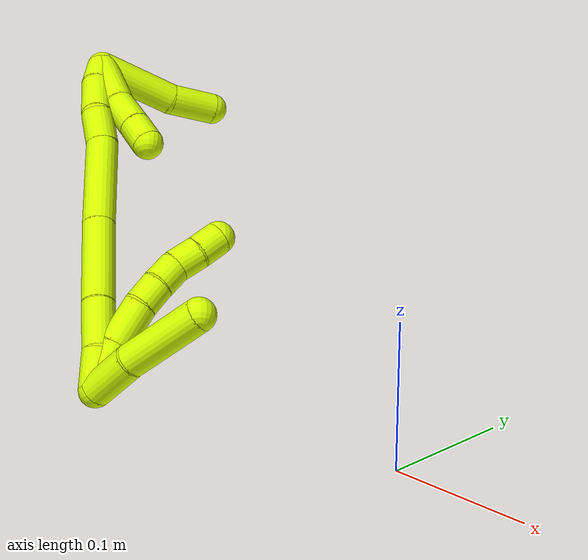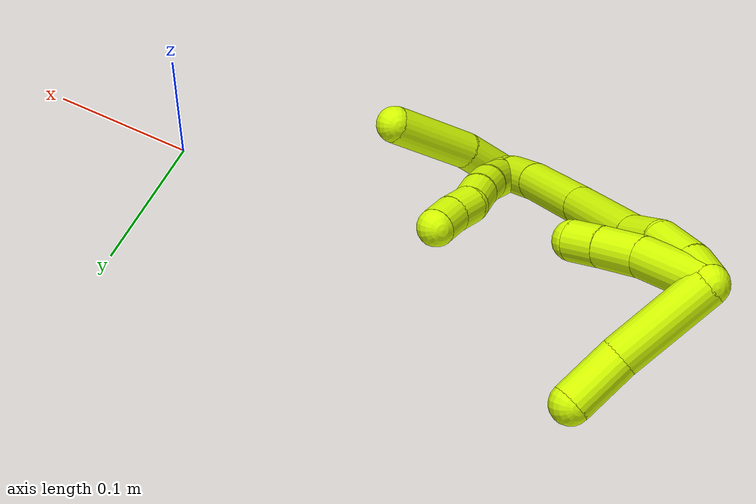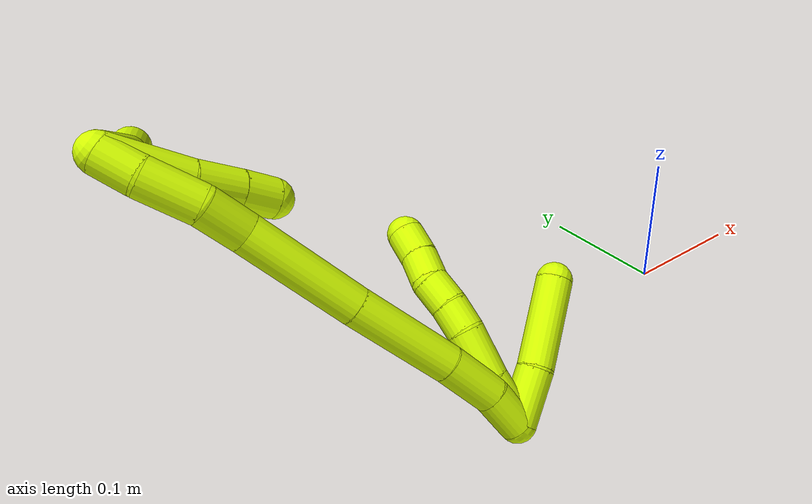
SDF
<sdf version="1.7">
 <world name="default">
  <model name="15">
   <static>0</static>
   <link name="15">
    <collision name="collision-cylinder-e_1_2_8">
     <pose>0.006007 0.004921 0.015695 -0.30385 0.350161 -0.054153</pose>
     <geometry><cylinder><radius>0.0125</radius><length>0.035021</length></cylinder></geometry>
     <surface>
      <friction><ode><mu>1.16</mu><mu2>1.16</mu2><slip1>0</slip1><slip2>0</slip2></ode></friction>
      <contact><ode><kp>1e+06</kp><kd>1</kd><max_vel>0</max_vel><min_depth>0.001</min_depth></ode></contact>
     </surface>
    </collision>
    <visual name="visual-cylinder-e_1_2_8">
     <pose>0.006007 0.004921 0.015695 -0.30385 0.350161 -0.054153</pose>
     <geometry><cylinder><radius>0.0125</radius><length>0.035021</length></cylinder></geometry>
     <material><ambient>0.835294 1 0 1</ambient></material>
    </visual>
    <collision name="collision-cylinder-e_2_8_9">
     <pose>0.019083 0.01681 0.045217 -0.466762 0.428256 -0.103295</pose>
     <geometry><cylinder><radius>0.0125</radius><length>0.034042</length></cylinder></geometry>
     <surface>
      <friction><ode><mu>1.16</mu><mu2>1.16</mu2><slip1>0</slip1><slip2>0</slip2></ode></friction>
      <contact><ode><kp>1e+06</kp><kd>1</kd><max_vel>0</max_vel><min_depth>0.001</min_depth></ode></contact>
     </surface>
    </collision>
    <visual name="visual-cylinder-e_2_8_9">
     <pose>0.019083 0.01681 0.045217 -0.466762 0.428256 -0.103295</pose>
     <geometry><cylinder><radius>0.0125</radius><length>0.034042</length></cylinder></geometry>
     <material><ambient>0.835294 1 0 1</ambient></material>
    </visual>
    <collision name="collision-cylinder-e_3_9_10">
     <pose>0.029264 0.029272 0.06689 -0.610951 0.31427 -0.099845</pose>
     <geometry><cylinder><radius>0.0125</radius><length>0.020142</length></cylinder></geometry>
     <surface>
      <friction><ode><mu>1.16</mu><mu2>1.16</mu2><slip1>0</slip1><slip2>0</slip2></ode></friction>
      <contact><ode><kp>1e+06</kp><kd>1</kd><max_vel>0</max_vel><min_depth>0.001</min_depth></ode></contact>
     </surface>
    </collision>
    <visual name="visual-cylinder-e_3_9_10">
     <pose>0.029264 0.029272 0.06689 -0.610951 0.31427 -0.099845</pose>
     <geometry><cylinder><radius>0.0125</radius><length>0.020142</length></cylinder></geometry>
     <material><ambient>0.835294 1 0 1</ambient></material>
    </visual>
    <collision name="collision-cylinder-e_4_10_11">
     <pose>0.034398 0.040982 0.082596 -0.669003 0.198931 -0.069342</pose>
     <geometry><cylinder><radius>0.0125</radius><length>0.020446</length></cylinder></geometry>
     <surface>
      <friction><ode><mu>1.16</mu><mu2>1.16</mu2><slip1>0</slip1><slip2>0</slip2></ode></friction>
      <contact><ode><kp>1e+06</kp><kd>1</kd><max_vel>0</max_vel><min_depth>0.001</min_depth></ode></contact>
     </surface>
    </collision>
    <visual name="visual-cylinder-e_4_10_11">
     <pose>0.034398 0.040982 0.082596 -0.669003 0.198931 -0.069342</pose>
     <geometry><cylinder><radius>0.0125</radius><length>0.020446</length></cylinder></geometry>
     <material><ambient>0.835294 1 0 1</ambient></material>
    </visual>
    <collision name="collision-cylinder-e_5_11_12">
     <pose>0.040342 0.054747 0.095972 -0.939963 0.397422 -0.203858</pose>
     <geometry><cylinder><radius>0.0125</radius><length>0.020278</length></cylinder></geometry>
     <surface>
      <friction><ode><mu>1.16</mu><mu2>1.16</mu2><slip1>0</slip1><slip2>0</slip2></ode></friction>
      <contact><ode><kp>1e+06</kp><kd>1</kd><max_vel>0</max_vel><min_depth>0.001</min_depth></ode></contact>
     </surface>
    </collision>
    <visual name="visual-cylinder-e_5_11_12">
     <pose>0.040342 0.054747 0.095972 -0.939963 0.397422 -0.203858</pose>
     <geometry><cylinder><radius>0.0125</radius><length>0.020278</length></cylinder></geometry>
     <material><ambient>0.835294 1 0 1</ambient></material>
    </visual>
    <collision name="collision-cylinder-e_6_12_6">
     <pose>0.047215 0.069563 0.107746 -0.859644 0.298201 -0.137502</pose>
     <geometry><cylinder><radius>0.0125</radius><length>0.02007</length></cylinder></geometry>
     <surface>
      <friction><ode><mu>1.16</mu><mu2>1.16</mu2><slip1>0</slip1><slip2>0</slip2></ode></friction>
      <contact><ode><kp>1e+06</kp><kd>1</kd><max_vel>0</max_vel><min_depth>0.001</min_depth></ode></contact>
     </surface>
    </collision>
    <visual name="visual-cylinder-e_6_12_6">
     <pose>0.047215 0.069563 0.107746 -0.859644 0.298201 -0.137502</pose>
     <geometry><cylinder><radius>0.0125</radius><length>0.02007</length></cylinder></geometry>
     <material><ambient>0.835294 1 0 1</ambient></material>
    </visual>
    <collision name="collision-cylinder-e_1_2_13">
     <pose>0.017441 0.005751 0.004369 -0.921142 1.17817 -0.64029</pose>
     <geometry><cylinder><radius>0.0125</radius><length>0.037755</length></cylinder></geometry>
     <surface>
      <friction><ode><mu>1.16</mu><mu2>1.16</mu2><slip1>0</slip1><slip2>0</slip2></ode></friction>
      <contact><ode><kp>1e+06</kp><kd>1</kd><max_vel>0</max_vel><min_depth>0.001</min_depth></ode></contact>
     </surface>
    </collision>
    <visual name="visual-cylinder-e_1_2_13">
     <pose>0.017441 0.005751 0.004369 -0.921142 1.17817 -0.64029</pose>
     <geometry><cylinder><radius>0.0125</radius><length>0.037755</length></cylinder></geometry>
     <material><ambient>0.835294 1 0 1</ambient></material>
    </visual>
    <collision name="collision-cylinder-e_2_13_5">
     <pose>0.061651 0.025474 0.016278 -1.0759 1.03548 -0.655171</pose>
     <geometry><cylinder><radius>0.0125</radius><length>0.062245</length></cylinder></geometry>
     <surface>
      <friction><ode><mu>1.16</mu><mu2>1.16</mu2><slip1>0</slip1><slip2>0</slip2></ode></friction>
      <contact><ode><kp>1e+06</kp><kd>1</kd><max_vel>0</max_vel><min_depth>0.001</min_depth></ode></contact>
     </surface>
    </collision>
    <visual name="visual-cylinder-e_2_13_5">
     <pose>0.061651 0.025474 0.016278 -1.0759 1.03548 -0.655171</pose>
     <geometry><cylinder><radius>0.0125</radius><length>0.062245</length></cylinder></geometry>
     <material><ambient>0.835294 1 0 1</ambient></material>
    </visual>
    <collision name="collision-cylinder-e_1_2_14">
     <pose>0.002791 0.000245 0.01421 -0.017257 0.193928 -0.001679</pose>
     <geometry><cylinder><radius>0.0125</radius><length>0.028967</length></cylinder></geometry>
     <surface>
      <friction><ode><mu>1.16</mu><mu2>1.16</mu2><slip1>0</slip1><slip2>0</slip2></ode></friction>
      <contact><ode><kp>1e+06</kp><kd>1</kd><max_vel>0</max_vel><min_depth>0.001</min_depth></ode></contact>
     </surface>
    </collision>
    <visual name="visual-cylinder-e_1_2_14">
     <pose>0.002791 0.000245 0.01421 -0.017257 0.193928 -0.001679</pose>
     <geometry><cylinder><radius>0.0125</radius><length>0.028967</length></cylinder></geometry>
     <material><ambient>0.835294 1 0 1</ambient></material>
    </visual>
    <collision name="collision-cylinder-e_2_14_15">
     <pose>0.005592 0.000154 0.047395 0.017757 0.000494 4e-06</pose>
     <geometry><cylinder><radius>0.0125</radius><length>0.037955</length></cylinder></geometry>
     <surface>
      <friction><ode><mu>1.16</mu><mu2>1.16</mu2><slip1>0</slip1><slip2>0</slip2></ode></friction>
      <contact><ode><kp>1e+06</kp><kd>1</kd><max_vel>0</max_vel><min_depth>0.001</min_depth></ode></contact>
     </surface>
    </collision>
    <visual name="visual-cylinder-e_2_14_15">
     <pose>0.005592 0.000154 0.047395 0.017757 0.000494 4e-06</pose>
     <geometry><cylinder><radius>0.0125</radius><length>0.037955</length></cylinder></geometry>
     <material><ambient>0.835294 1 0 1</ambient></material>
    </visual>
    <collision name="collision-cylinder-e_3_15_16">
     <pose>0.003346 0.000937 0.101104 -0.032252 -0.064809 0.001046</pose>
     <geometry><cylinder><radius>0.0125</radius><length>0.069652</length></cylinder></geometry>
     <surface>
      <friction><ode><mu>1.16</mu><mu2>1.16</mu2><slip1>0</slip1><slip2>0</slip2></ode></friction>
      <contact><ode><kp>1e+06</kp><kd>1</kd><max_vel>0</max_vel><min_depth>0.001</min_depth></ode></contact>
     </surface>
    </collision>
    <visual name="visual-cylinder-e_3_15_16">
     <pose>0.003346 0.000937 0.101104 -0.032252 -0.064809 0.001046</pose>
     <geometry><cylinder><radius>0.0125</radius><length>0.069652</length></cylinder></geometry>
     <material><ambient>0.835294 1 0 1</ambient></material>
    </visual>
    <collision name="collision-cylinder-e_4_16_17">
     <pose>-0.000357 0.004052 0.173882 -0.052373 -0.037973 0.000995</pose>
     <geometry><cylinder><radius>0.0125</radius><length>0.076248</length></cylinder></geometry>
     <surface>
      <friction><ode><mu>1.16</mu><mu2>1.16</mu2><slip1>0</slip1><slip2>0</slip2></ode></friction>
      <contact><ode><kp>1e+06</kp><kd>1</kd><max_vel>0</max_vel><min_depth>0.001</min_depth></ode></contact>
     </surface>
    </collision>
    <visual name="visual-cylinder-e_4_16_17">
     <pose>-0.000357 0.004052 0.173882 -0.052373 -0.037973 0.000995</pose>
     <geometry><cylinder><radius>0.0125</radius><length>0.076248</length></cylinder></geometry>
     <material><ambient>0.835294 1 0 1</ambient></material>
    </visual>
    <collision name="collision-cylinder-e_5_17_18">
     <pose>-0.002202 0.004115 0.225986 0.136522 -0.02802 -0.001916</pose>
     <geometry><cylinder><radius>0.0125</radius><length>0.028395</length></cylinder></geometry>
     <surface>
      <friction><ode><mu>1.16</mu><mu2>1.16</mu2><slip1>0</slip1><slip2>0</slip2></ode></friction>
      <contact><ode><kp>1e+06</kp><kd>1</kd><max_vel>0</max_vel><min_depth>0.001</min_depth></ode></contact>
     </surface>
    </collision>
    <visual name="visual-cylinder-e_5_17_18">
     <pose>-0.002202 0.004115 0.225986 0.136522 -0.02802 -0.001916</pose>
     <geometry><cylinder><radius>0.0125</radius><length>0.028395</length></cylinder></geometry>
     <material><ambient>0.835294 1 0 1</ambient></material>
    </visual>
    <collision name="collision-cylinder-e_6_18_19">
     <pose>-0.006167 0.003512 0.257109 -0.077721 -0.205507 0.008018</pose>
     <geometry><cylinder><radius>0.0125</radius><length>0.034964</length></cylinder></geometry>
     <surface>
      <friction><ode><mu>1.16</mu><mu2>1.16</mu2><slip1>0</slip1><slip2>0</slip2></ode></friction>
      <contact><ode><kp>1e+06</kp><kd>1</kd><max_vel>0</max_vel><min_depth>0.001</min_depth></ode></contact>
     </surface>
    </collision>
    <visual name="visual-cylinder-e_6_18_19">
     <pose>-0.006167 0.003512 0.257109 -0.077721 -0.205507 0.008018</pose>
     <geometry><cylinder><radius>0.0125</radius><length>0.034964</length></cylinder></geometry>
     <material><ambient>0.835294 1 0 1</ambient></material>
    </visual>
    <collision name="collision-cylinder-e_7_19_1">
     <pose>-0.011471 0.007919 0.285545 -0.264277 -0.14631 0.019481</pose>
     <geometry><cylinder><radius>0.0125</radius><length>0.02382</length></cylinder></geometry>
     <surface>
      <friction><ode><mu>1.16</mu><mu2>1.16</mu2><slip1>0</slip1><slip2>0</slip2></ode></friction>
      <contact><ode><kp>1e+06</kp><kd>1</kd><max_vel>0</max_vel><min_depth>0.001</min_depth></ode></contact>
     </surface>
    </collision>
    <visual name="visual-cylinder-e_7_19_1">
     <pose>-0.011471 0.007919 0.285545 -0.264277 -0.14631 0.019481</pose>
     <geometry><cylinder><radius>0.0125</radius><length>0.02382</length></cylinder></geometry>
     <material><ambient>0.835294 1 0 1</ambient></material>
    </visual>
    <collision name="collision-cylinder-e_1_1_20">
     <pose>-0.005143 0.014718 0.273808 -2.98194 0.3318 -2.2502</pose>
     <geometry><cylinder><radius>0.0125</radius><length>0.049515</length></cylinder></geometry>
     <surface>
      <friction><ode><mu>1.16</mu><mu2>1.16</mu2><slip1>0</slip1><slip2>0</slip2></ode></friction>
      <contact><ode><kp>1e+06</kp><kd>1</kd><max_vel>0</max_vel><min_depth>0.001</min_depth></ode></contact>
     </surface>
    </collision>
    <visual name="visual-cylinder-e_1_1_20">
     <pose>-0.005143 0.014718 0.273808 -2.98194 0.3318 -2.2502</pose>
     <geometry><cylinder><radius>0.0125</radius><length>0.049515</length></cylinder></geometry>
     <material><ambient>0.835294 1 0 1</ambient></material>
    </visual>
    <collision name="collision-cylinder-e_2_20_21">
     <pose>0.008172 0.022956 0.238166 -2.79563 0.375411 -1.65418</pose>
     <geometry><cylinder><radius>0.0125</radius><length>0.028639</length></cylinder></geometry>
     <surface>
      <friction><ode><mu>1.16</mu><mu2>1.16</mu2><slip1>0</slip1><slip2>0</slip2></ode></friction>
      <contact><ode><kp>1e+06</kp><kd>1</kd><max_vel>0</max_vel><min_depth>0.001</min_depth></ode></contact>
     </surface>
    </collision>
    <visual name="visual-cylinder-e_2_20_21">
     <pose>0.008172 0.022956 0.238166 -2.79563 0.375411 -1.65418</pose>
     <geometry><cylinder><radius>0.0125</radius><length>0.028639</length></cylinder></geometry>
     <material><ambient>0.835294 1 0 1</ambient></material>
    </visual>
    <collision name="collision-cylinder-e_3_21_4">
     <pose>0.017028 0.031008 0.215947 -2.79181 0.336377 -1.53094</pose>
     <geometry><cylinder><radius>0.0125</radius><length>0.021846</length></cylinder></geometry>
     <surface>
      <friction><ode><mu>1.16</mu><mu2>1.16</mu2><slip1>0</slip1><slip2>0</slip2></ode></friction>
      <contact><ode><kp>1e+06</kp><kd>1</kd><max_vel>0</max_vel><min_depth>0.001</min_depth></ode></contact>
     </surface>
    </collision>
    <visual name="visual-cylinder-e_3_21_4">
     <pose>0.017028 0.031008 0.215947 -2.79181 0.336377 -1.53094</pose>
     <geometry><cylinder><radius>0.0125</radius><length>0.021846</length></cylinder></geometry>
     <material><ambient>0.835294 1 0 1</ambient></material>
    </visual>
    <collision name="collision-cylinder-e_1_1_22">
     <pose>-0.013685 0.041585 0.289909 -1.79604 -0.015231 0.019116</pose>
     <geometry><cylinder><radius>0.0125</radius><length>0.062769</length></cylinder></geometry>
     <surface>
      <friction><ode><mu>1.16</mu><mu2>1.16</mu2><slip1>0</slip1><slip2>0</slip2></ode></friction>
      <contact><ode><kp>1e+06</kp><kd>1</kd><max_vel>0</max_vel><min_depth>0.001</min_depth></ode></contact>
     </surface>
    </collision>
    <visual name="visual-cylinder-e_1_1_22">
     <pose>-0.013685 0.041585 0.289909 -1.79604 -0.015231 0.019116</pose>
     <geometry><cylinder><radius>0.0125</radius><length>0.062769</length></cylinder></geometry>
     <material><ambient>0.835294 1 0 1</ambient></material>
    </visual>
    <collision name="collision-cylinder-e_2_22_3">
     <pose>-0.013703 0.090782 0.283035 -1.56356 0.024759 -0.024581</pose>
     <geometry><cylinder><radius>0.0125</radius><length>0.037231</length></cylinder></geometry>
     <surface>
      <friction><ode><mu>1.16</mu><mu2>1.16</mu2><slip1>0</slip1><slip2>0</slip2></ode></friction>
      <contact><ode><kp>1e+06</kp><kd>1</kd><max_vel>0</max_vel><min_depth>0.001</min_depth></ode></contact>
     </surface>
    </collision>
    <visual name="visual-cylinder-e_2_22_3">
     <pose>-0.013703 0.090782 0.283035 -1.56356 0.024759 -0.024581</pose>
     <geometry><cylinder><radius>0.0125</radius><length>0.037231</length></cylinder></geometry>
     <material><ambient>0.835294 1 0 1</ambient></material>
    </visual>
    <collision name="collision-sphere-3">
     <pose>-0.013242 0.109392 0.28317 0 -0 0</pose>
     <geometry><sphere><radius>0.0125</radius></sphere></geometry>
     <surface>
      <friction><ode><mu>1.16</mu><mu2>1.16</mu2><slip1>0</slip1><slip2>0</slip2></ode></friction>
      <contact><ode><kp>1e+06</kp><kd>1</kd><max_vel>0</max_vel><min_depth>0.001</min_depth></ode></contact>
     </surface>
    </collision>
    <visual name="visual-sphere-3">
     <pose>-0.013242 0.109392 0.28317 0 -0 0</pose>
     <geometry><sphere><radius>0.0125</radius></sphere></geometry>
     <material><ambient>0.835294 1 0 1</ambient></material>
    </visual>
    <collision name="collision-sphere-22">
     <pose>-0.014163 0.072173 0.2829 0 -0 0</pose>
     <geometry><sphere><radius>0.0125</radius></sphere></geometry>
     <surface>
      <friction><ode><mu>1.16</mu><mu2>1.16</mu2><slip1>0</slip1><slip2>0</slip2></ode></friction>
      <contact><ode><kp>1e+06</kp><kd>1</kd><max_vel>0</max_vel><min_depth>0.001</min_depth></ode></contact>
     </surface>
    </collision>
    <visual name="visual-sphere-22">
     <pose>-0.014163 0.072173 0.2829 0 -0 0</pose>
     <geometry><sphere><radius>0.0125</radius></sphere></geometry>
     <material><ambient>0.835294 1 0 1</ambient></material>
    </visual>
    <collision name="collision-sphere-4">
     <pose>0.020633 0.034541 0.20626 0 -0 0</pose>
     <geometry><sphere><radius>0.0125</radius></sphere></geometry>
     <surface>
      <friction><ode><mu>1.16</mu><mu2>1.16</mu2><slip1>0</slip1><slip2>0</slip2></ode></friction>
      <contact><ode><kp>1e+06</kp><kd>1</kd><max_vel>0</max_vel><min_depth>0.001</min_depth></ode></contact>
     </surface>
    </collision>
    <visual name="visual-sphere-4">
     <pose>0.020633 0.034541 0.20626 0 -0 0</pose>
     <geometry><sphere><radius>0.0125</radius></sphere></geometry>
     <material><ambient>0.835294 1 0 1</ambient></material>
    </visual>
    <collision name="collision-sphere-21">
     <pose>0.013422 0.027474 0.225633 0 -0 0</pose>
     <geometry><sphere><radius>0.0125</radius></sphere></geometry>
     <surface>
      <friction><ode><mu>1.16</mu><mu2>1.16</mu2><slip1>0</slip1><slip2>0</slip2></ode></friction>
      <contact><ode><kp>1e+06</kp><kd>1</kd><max_vel>0</max_vel><min_depth>0.001</min_depth></ode></contact>
     </surface>
    </collision>
    <visual name="visual-sphere-21">
     <pose>0.013422 0.027474 0.225633 0 -0 0</pose>
     <geometry><sphere><radius>0.0125</radius></sphere></geometry>
     <material><ambient>0.835294 1 0 1</ambient></material>
    </visual>
    <collision name="collision-sphere-20">
     <pose>0.002922 0.018439 0.250699 0 -0 0</pose>
     <geometry><sphere><radius>0.0125</radius></sphere></geometry>
     <surface>
      <friction><ode><mu>1.16</mu><mu2>1.16</mu2><slip1>0</slip1><slip2>0</slip2></ode></friction>
      <contact><ode><kp>1e+06</kp><kd>1</kd><max_vel>0</max_vel><min_depth>0.001</min_depth></ode></contact>
     </surface>
    </collision>
    <visual name="visual-sphere-20">
     <pose>0.002922 0.018439 0.250699 0 -0 0</pose>
     <geometry><sphere><radius>0.0125</radius></sphere></geometry>
     <material><ambient>0.835294 1 0 1</ambient></material>
    </visual>
    <collision name="collision-sphere-12">
     <pose>0.044267 0.062296 0.101486 0 -0 0</pose>
     <geometry><sphere><radius>0.0125</radius></sphere></geometry>
     <surface>
      <friction><ode><mu>1.16</mu><mu2>1.16</mu2><slip1>0</slip1><slip2>0</slip2></ode></friction>
      <contact><ode><kp>1e+06</kp><kd>1</kd><max_vel>0</max_vel><min_depth>0.001</min_depth></ode></contact>
     </surface>
    </collision>
    <visual name="visual-sphere-12">
     <pose>0.044267 0.062296 0.101486 0 -0 0</pose>
     <geometry><sphere><radius>0.0125</radius></sphere></geometry>
     <material><ambient>0.835294 1 0 1</ambient></material>
    </visual>
    <collision name="collision-sphere-11">
     <pose>0.036418 0.047197 0.090458 0 -0 0</pose>
     <geometry><sphere><radius>0.0125</radius></sphere></geometry>
     <surface>
      <friction><ode><mu>1.16</mu><mu2>1.16</mu2><slip1>0</slip1><slip2>0</slip2></ode></friction>
      <contact><ode><kp>1e+06</kp><kd>1</kd><max_vel>0</max_vel><min_depth>0.001</min_depth></ode></contact>
     </surface>
    </collision>
    <visual name="visual-sphere-11">
     <pose>0.036418 0.047197 0.090458 0 -0 0</pose>
     <geometry><sphere><radius>0.0125</radius></sphere></geometry>
     <material><ambient>0.835294 1 0 1</ambient></material>
    </visual>
    <collision name="collision-sphere-10">
     <pose>0.032378 0.034766 0.074735 0 -0 0</pose>
     <geometry><sphere><radius>0.0125</radius></sphere></geometry>
     <surface>
      <friction><ode><mu>1.16</mu><mu2>1.16</mu2><slip1>0</slip1><slip2>0</slip2></ode></friction>
      <contact><ode><kp>1e+06</kp><kd>1</kd><max_vel>0</max_vel><min_depth>0.001</min_depth></ode></contact>
     </surface>
    </collision>
    <visual name="visual-sphere-10">
     <pose>0.032378 0.034766 0.074735 0 -0 0</pose>
     <geometry><sphere><radius>0.0125</radius></sphere></geometry>
     <material><ambient>0.835294 1 0 1</ambient></material>
    </visual>
    <collision name="collision-sphere-9">
     <pose>0.026151 0.023778 0.059044 0 -0 0</pose>
     <geometry><sphere><radius>0.0125</radius></sphere></geometry>
     <surface>
      <friction><ode><mu>1.16</mu><mu2>1.16</mu2><slip1>0</slip1><slip2>0</slip2></ode></friction>
      <contact><ode><kp>1e+06</kp><kd>1</kd><max_vel>0</max_vel><min_depth>0.001</min_depth></ode></contact>
     </surface>
    </collision>
    <visual name="visual-sphere-9">
     <pose>0.026151 0.023778 0.059044 0 -0 0</pose>
     <geometry><sphere><radius>0.0125</radius></sphere></geometry>
     <material><ambient>0.835294 1 0 1</ambient></material>
    </visual>
    <collision name="collision-sphere-2">
     <geometry><sphere><radius>0.0125</radius></sphere></geometry>
     <surface>
      <friction><ode><mu>1.16</mu><mu2>1.16</mu2><slip1>0</slip1><slip2>0</slip2></ode></friction>
      <contact><ode><kp>1e+06</kp><kd>1</kd><max_vel>0</max_vel><min_depth>0.001</min_depth></ode></contact>
     </surface>
    </collision>
    <visual name="visual-sphere-2">
     <geometry><sphere><radius>0.0125</radius></sphere></geometry>
     <material><ambient>0.835294 1 0 1</ambient></material>
    </visual>
    <collision name="collision-sphere-19">
     <pose>-0.009735 0.004841 0.274171 0 -0 0</pose>
     <geometry><sphere><radius>0.0125</radius></sphere></geometry>
     <surface>
      <friction><ode><mu>1.16</mu><mu2>1.16</mu2><slip1>0</slip1><slip2>0</slip2></ode></friction>
      <contact><ode><kp>1e+06</kp><kd>1</kd><max_vel>0</max_vel><min_depth>0.001</min_depth></ode></contact>
     </surface>
    </collision>
    <visual name="visual-sphere-19">
     <pose>-0.009735 0.004841 0.274171 0 -0 0</pose>
     <geometry><sphere><radius>0.0125</radius></sphere></geometry>
     <material><ambient>0.835294 1 0 1</ambient></material>
    </visual>
    <collision name="collision-sphere-8">
     <pose>0.012014 0.009842 0.031389 0 -0 0</pose>
     <geometry><sphere><radius>0.0125</radius></sphere></geometry>
     <surface>
      <friction><ode><mu>1.16</mu><mu2>1.16</mu2><slip1>0</slip1><slip2>0</slip2></ode></friction>
      <contact><ode><kp>1e+06</kp><kd>1</kd><max_vel>0</max_vel><min_depth>0.001</min_depth></ode></contact>
     </surface>
    </collision>
    <visual name="visual-sphere-8">
     <pose>0.012014 0.009842 0.031389 0 -0 0</pose>
     <geometry><sphere><radius>0.0125</radius></sphere></geometry>
     <material><ambient>0.835294 1 0 1</ambient></material>
    </visual>
    <collision name="collision-sphere-6">
     <pose>0.050163 0.07683 0.114007 0 -0 0</pose>
     <geometry><sphere><radius>0.0125</radius></sphere></geometry>
     <surface>
      <friction><ode><mu>1.16</mu><mu2>1.16</mu2><slip1>0</slip1><slip2>0</slip2></ode></friction>
      <contact><ode><kp>1e+06</kp><kd>1</kd><max_vel>0</max_vel><min_depth>0.001</min_depth></ode></contact>
     </surface>
    </collision>
    <visual name="visual-sphere-6">
     <pose>0.050163 0.07683 0.114007 0 -0 0</pose>
     <geometry><sphere><radius>0.0125</radius></sphere></geometry>
     <material><ambient>0.835294 1 0 1</ambient></material>
    </visual>
    <collision name="collision-sphere-13">
     <pose>0.034882 0.011503 0.008738 0 -0 0</pose>
     <geometry><sphere><radius>0.0125</radius></sphere></geometry>
     <surface>
      <friction><ode><mu>1.16</mu><mu2>1.16</mu2><slip1>0</slip1><slip2>0</slip2></ode></friction>
      <contact><ode><kp>1e+06</kp><kd>1</kd><max_vel>0</max_vel><min_depth>0.001</min_depth></ode></contact>
     </surface>
    </collision>
    <visual name="visual-sphere-13">
     <pose>0.034882 0.011503 0.008738 0 -0 0</pose>
     <geometry><sphere><radius>0.0125</radius></sphere></geometry>
     <material><ambient>0.835294 1 0 1</ambient></material>
    </visual>
    <collision name="collision-sphere-5">
     <pose>0.08842 0.039445 0.023819 0 -0 0</pose>
     <geometry><sphere><radius>0.0125</radius></sphere></geometry>
     <surface>
      <friction><ode><mu>1.16</mu><mu2>1.16</mu2><slip1>0</slip1><slip2>0</slip2></ode></friction>
      <contact><ode><kp>1e+06</kp><kd>1</kd><max_vel>0</max_vel><min_depth>0.001</min_depth></ode></contact>
     </surface>
    </collision>
    <visual name="visual-sphere-5">
     <pose>0.08842 0.039445 0.023819 0 -0 0</pose>
     <geometry><sphere><radius>0.0125</radius></sphere></geometry>
     <material><ambient>0.835294 1 0 1</ambient></material>
    </visual>
    <collision name="collision-sphere-14">
     <pose>0.005582 0.00049 0.02842 0 -0 0</pose>
     <geometry><sphere><radius>0.0125</radius></sphere></geometry>
     <surface>
      <friction><ode><mu>1.16</mu><mu2>1.16</mu2><slip1>0</slip1><slip2>0</slip2></ode></friction>
      <contact><ode><kp>1e+06</kp><kd>1</kd><max_vel>0</max_vel><min_depth>0.001</min_depth></ode></contact>
     </surface>
    </collision>
    <visual name="visual-sphere-14">
     <pose>0.005582 0.00049 0.02842 0 -0 0</pose>
     <geometry><sphere><radius>0.0125</radius></sphere></geometry>
     <material><ambient>0.835294 1 0 1</ambient></material>
    </visual>
    <collision name="collision-sphere-15">
     <pose>0.005601 -0.000183 0.066369 0 -0 0</pose>
     <geometry><sphere><radius>0.0125</radius></sphere></geometry>
     <surface>
      <friction><ode><mu>1.16</mu><mu2>1.16</mu2><slip1>0</slip1><slip2>0</slip2></ode></friction>
      <contact><ode><kp>1e+06</kp><kd>1</kd><max_vel>0</max_vel><min_depth>0.001</min_depth></ode></contact>
     </surface>
    </collision>
    <visual name="visual-sphere-15">
     <pose>0.005601 -0.000183 0.066369 0 -0 0</pose>
     <geometry><sphere><radius>0.0125</radius></sphere></geometry>
     <material><ambient>0.835294 1 0 1</ambient></material>
    </visual>
    <collision name="collision-sphere-16">
     <pose>0.00109 0.002058 0.135838 0 -0 0</pose>
     <geometry><sphere><radius>0.0125</radius></sphere></geometry>
     <surface>
      <friction><ode><mu>1.16</mu><mu2>1.16</mu2><slip1>0</slip1><slip2>0</slip2></ode></friction>
      <contact><ode><kp>1e+06</kp><kd>1</kd><max_vel>0</max_vel><min_depth>0.001</min_depth></ode></contact>
     </surface>
    </collision>
    <visual name="visual-sphere-16">
     <pose>0.00109 0.002058 0.135838 0 -0 0</pose>
     <geometry><sphere><radius>0.0125</radius></sphere></geometry>
     <material><ambient>0.835294 1 0 1</ambient></material>
    </visual>
    <collision name="collision-sphere-17">
     <pose>-0.001804 0.006046 0.211927 0 -0 0</pose>
     <geometry><sphere><radius>0.0125</radius></sphere></geometry>
     <surface>
      <friction><ode><mu>1.16</mu><mu2>1.16</mu2><slip1>0</slip1><slip2>0</slip2></ode></friction>
      <contact><ode><kp>1e+06</kp><kd>1</kd><max_vel>0</max_vel><min_depth>0.001</min_depth></ode></contact>
     </surface>
    </collision>
    <visual name="visual-sphere-17">
     <pose>-0.001804 0.006046 0.211927 0 -0 0</pose>
     <geometry><sphere><radius>0.0125</radius></sphere></geometry>
     <material><ambient>0.835294 1 0 1</ambient></material>
    </visual>
    <collision name="collision-sphere-18">
     <pose>-0.0026 0.002184 0.240046 0 -0 0</pose>
     <geometry><sphere><radius>0.0125</radius></sphere></geometry>
     <surface>
      <friction><ode><mu>1.16</mu><mu2>1.16</mu2><slip1>0</slip1><slip2>0</slip2></ode></friction>
      <contact><ode><kp>1e+06</kp><kd>1</kd><max_vel>0</max_vel><min_depth>0.001</min_depth></ode></contact>
     </surface>
    </collision>
    <visual name="visual-sphere-18">
     <pose>-0.0026 0.002184 0.240046 0 -0 0</pose>
     <geometry><sphere><radius>0.0125</radius></sphere></geometry>
     <material><ambient>0.835294 1 0 1</ambient></material>
    </visual>
    <collision name="collision-sphere-1">
     <pose>-0.013207 0.010997 0.296918 0 -0 0</pose>
     <geometry><sphere><radius>0.0125</radius></sphere></geometry>
     <surface>
      <friction><ode><mu>1.16</mu><mu2>1.16</mu2><slip1>0</slip1><slip2>0</slip2></ode></friction>
      <contact><ode><kp>1e+06</kp><kd>1</kd><max_vel>0</max_vel><min_depth>0.001</min_depth></ode></contact>
     </surface>
    </collision>
    <visual name="visual-sphere-1">
     <pose>-0.013207 0.010997 0.296918 0 -0 0</pose>
     <geometry><sphere><radius>0.0125</radius></sphere></geometry>
     <material><ambient>0.835294 1 0 1</ambient></material>
    </visual>
    <inertial>
     <pose>0.009792 0.020467 0.145282 0 -0 0</pose>
     <mass>0.75</mass>
     <inertia><ixx>0.000126</ixx><ixy>0</ixy><ixz>0</ixz><iyy>0.000128</iyy><iyz>0</iyz><izz>-6e-05</izz></inertia>
    </inertial>
   </link>
   <pose>-0.213607 -0.076461 0.014186 -0.408686 -0.721739 -0.09864</pose>
  </model>
 </world>
</sdf>
